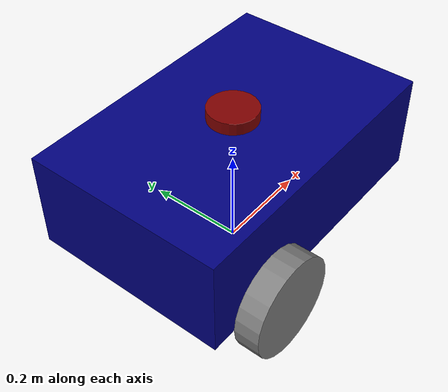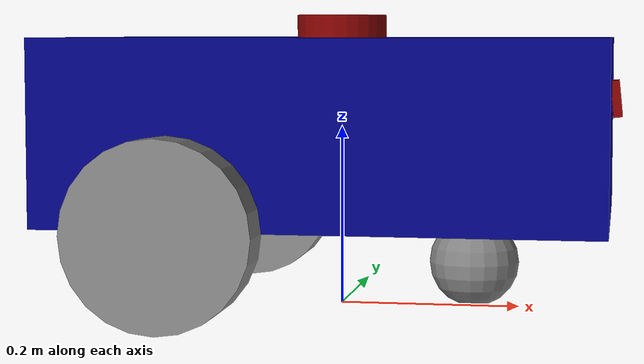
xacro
<?xml version="1.0"?>
<robot xmlns:xacro="http://www.ros.org/wiki/xacro" name = "mobile_robot" >

    <xacro:include filename="common_properties.urdf.xacro"   />
    <xacro:include filename="mobile_robot.urdf.xacro"        />
    <xacro:include filename="mobile_robot_gazebo.urdf.xacro" />

</robot>

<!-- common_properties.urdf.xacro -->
<robot xmlns:xacro="http://www.ros.org/wiki/xacro">

    <material name="blue">
        <color rgba="0.0 0.0 0.5 1.0"/>
    </material>

    <material name="grey">
        <color rgba="0.5 0.5 0.5 1.0"/>
    </material>

    <material name="red">
        <color rgba="0.5 0.0 0.0 1.0"/>
    </material>

    <xacro:macro name="box_inertia" params="m l w h xyz rpy">
        <inertial>
            <origin xyz="${xyz}" rpy="${rpy}"/>
            <mass value="${m}"/>
            <inertia ixx="${(m/12) * (l*l + h*h)}" ixy="0.0" ixz="0.0"
                     iyy="${(m/12) * (l*l + w*w)}" iyz="0.0"
                     izz="${(m/12) * (w*w + h*h)}"/>
        </inertial>

    </xacro:macro>

    <xacro:macro name="cyclinder_inertia" params=" r l m xyz rpy">
        <inertial>
            <origin xyz="${xyz}" rpy="${rpy}"/>
            <mass value="${m}"/>
            <inertia ixx="${(m/12) * (3*r*r + l*l)}" ixy="0.0" ixz="0.0"
                     iyy="${(m/12) * (3*r*r + l*l)}" iyz="0.0"
                     izz="${(m/2)  * (r*r)}"/>
        </inertial>

    </xacro:macro>

    <xacro:macro name="sphere_inertia" params="r m xyz rpy">
        <inertial>
            <origin xyz="${xyz}" rpy="${rpy}"/>
            <mass value="${m}"/>
            <inertia ixx="${(2.0/5.0) * (m*r*r)}" ixy="0.0" ixz="0.0"
                     iyy="${(2.0/5.0) * (m*r*r)}" iyz="0.0"
                     izz="${(2.0/5.0) * (m*r*r)}"/>
        </inertial>

    </xacro:macro>

</robot>

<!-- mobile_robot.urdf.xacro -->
<robot xmlns:xacro="http://www.ros.org/wiki/xacro"  >

    <xacro:property name="base_width"   value="0.4"  />
    <xacro:property name="base_lenght"  value="0.6"  />
    <xacro:property name="base_hight"   value="0.2"  />
    <xacro:property name="wheel_radius" value="0.1"  />
    <xacro:property name="wheel_lenght" value="0.05" />

    <!-- this is the base point in the map  -->
    <link name="base_footprint">
        <origin xyz="0 0 0" rpy="0 0 0"/>
    </link>

    <!--the main body of the mobile robot-->
    <link name="base_link">
        <visual>
            <origin xyz="0 0 ${wheel_radius}" rpy="0 0 0" />
            <geometry>
                <box size="${base_lenght} ${base_width} ${base_hight}"/>
            </geometry>
            <material name="blue"/>
        </visual>
        <collision>
            <origin xyz="0 0 ${wheel_radius}" rpy="0 0 0" />
            <geometry>
                <box size="${base_lenght} ${base_width} ${base_hight}"/>
            </geometry>
        </collision>
        <xacro:box_inertia  m="5.0" l="${2.0*base_lenght}" w="${2.0*base_width}" h="${2.0*base_hight}"
                            xyz="0 0 ${wheel_radius}"  rpy="0 0 0"     />
    </link>

    <link name="right_wheel_link">
        <visual>
            <origin xyz="0 0 0" rpy="${pi/2.0} 0 0" />
            <geometry>
                <cylinder radius="${wheel_radius}" length="${wheel_lenght}"/>
            </geometry>
            <material name="grey"/>
        </visual>
        <collision>
            <origin xyz="0 0 0" rpy="${pi/2.0} 0 0" />
            <geometry>
                <cylinder radius="${wheel_radius}" length="${wheel_lenght}"/>
            </geometry>
        </collision>
        <xacro:cyclinder_inertia r="${2.0*wheel_radius}" l="${2.0*wheel_lenght}" m="2.0"
                                 xyz="0 0 0" rpy="${pi/2.0} 0 0"  />
    </link>

    <link name="left_wheel_link">
        <visual>
            <origin xyz="0 0 0" rpy="${-pi/2.0} 0 0" />
            <geometry>
                <cylinder radius="${wheel_radius}" length="${wheel_lenght}"/>
            </geometry>
            <material name="grey"/>
        </visual>
        <collision>
            <origin xyz="0 0 0" rpy="${-pi/2.0} 0 0" />
            <geometry>
                <cylinder radius="${wheel_radius}" length="${wheel_lenght}"/>
            </geometry>
        </collision>
        <xacro:cyclinder_inertia r="${2.0*wheel_radius}" l="${2.0*wheel_lenght}" m="2.0"
                                 xyz="0 0 0" rpy="${-pi/2.0} 0 0"  />
    </link>

    <link name="caster_wheel_link">
        <visual>
            <origin xyz="0 0 0" rpy="0 0 0" />
            <geometry>
                <sphere radius="${wheel_radius/2.0}"/>
            </geometry>
            <material name="grey"/>
        </visual>
        <collision>
            <origin xyz="0 0 0" rpy="0 0 0" />
            <geometry>
                <sphere radius="${wheel_radius/2.0}"/>
            </geometry>
        </collision>
        <xacro:sphere_inertia m="2.5" r="${wheel_radius/2.0}"
                              xyz="0 0 0" rpy="0 0 0"  />
    </link>

    <link name="lidar_link">
        <visual>
            <origin xyz="0 0 0" rpy="0 0 0" />
            <geometry>
                <cylinder radius="${wheel_radius/2.0}" length="${wheel_lenght/2.0}"/>
            </geometry>
            <material name="red"/>
        </visual>
        <collision>
            <origin xyz="0 0 0" rpy="0 0 0" />
            <geometry>
                <cylinder radius="${wheel_radius/2.0}" length="${wheel_lenght/2.0}"/>
            </geometry>
        </collision>
        <xacro:cyclinder_inertia r="${2.0*wheel_radius}" l="${2.0*wheel_lenght}" m="0.5"
                                 xyz="0 0 0" rpy="0 0 0"  />
    </link>

    <link name="camera_link">
        <visual>
            <origin xyz="0 0 0" rpy="0 ${pi/2.0} 0" />
            <geometry>
                <box size="0.04 0.04 0.01"/>
            </geometry>
            <material name="red"/>
        </visual>
        <collision>
            <origin xyz="0 0 0" rpy="0 0 0" />
            <geometry>
                <box size="0.04 0.04 0.02"/>
            </geometry>
        </collision>
        <xacro:box_inertia  m="0.05" l="0.04" w="0.04" h="0.02"
                            xyz="0 0 0"  rpy="0 0 0"     />
    </link>

    <joint name="blueprint_body_joint" type="fixed">
        <parent link="base_footprint"/>
        <child link="base_link"/>
        <origin xyz="0.0 0.0 ${wheel_radius}" rpy="0.0 0.0 0.0"/>
    </joint>

    <joint name="base_right_wheel_joint" type="continuous">
        <parent link="base_link"/>
        <child link="right_wheel_link"/>
        <axis xyz="0 1 0"/>
        <origin xyz="${-base_lenght/4.0} ${(-base_width/2.0)+(-wheel_lenght/2.0)} 0" rpy="0 0 0"/>
    </joint>

    <joint name="base_left_wheel_joint" type="continuous">
        <parent link="base_link"/>
        <child link="left_wheel_link"/>
        <axis xyz="0 1 0"/>
        <origin xyz="${-base_lenght/4.0} ${(base_width/2.0)+(wheel_lenght/2.0)} 0" rpy="0 0 0"/>
    </joint>

    <joint name="base_caster_wheel_joint" type="fixed">
        <parent link="base_link"/>
        <child link="caster_wheel_link"/>
        <origin xyz="${base_lenght/4.0} 0.0 ${-wheel_radius/2.0}" rpy="0.0 0.0 0.0"/>
    </joint>

    <joint name="base_lidar_joint" type="fixed">
        <parent link="base_link"/>
        <child link="lidar_link"/>
        <origin xyz="0.0 0.0 ${base_hight + wheel_lenght/4.0}" rpy="0.0 0.0 0.0"/>
    </joint>

    <joint name="base_camera_link" type="fixed">
        <parent link="base_link"/>
        <child link="camera_link"/>
        <origin xyz="${base_lenght/2.0 + 0.01/2.0} 0.0 ${base_hight/1.5}" rpy="0.0 -0.1 0.0"/>
    </joint>

</robot>
